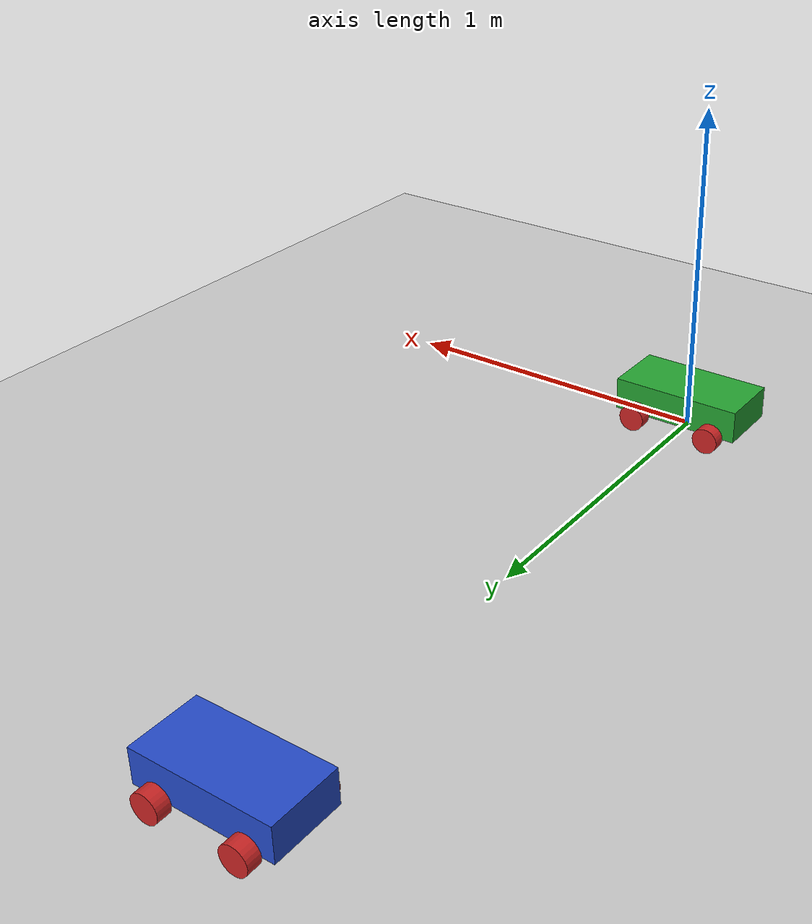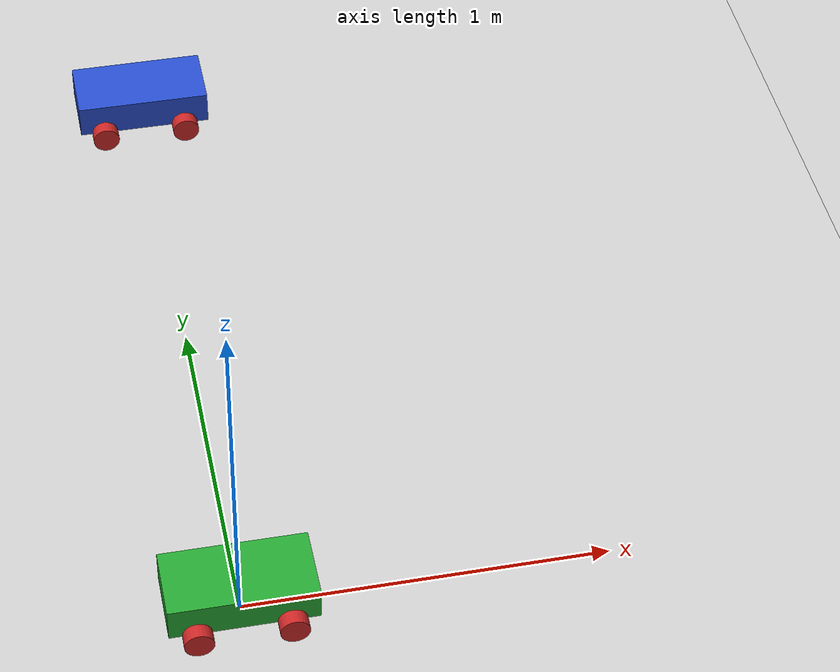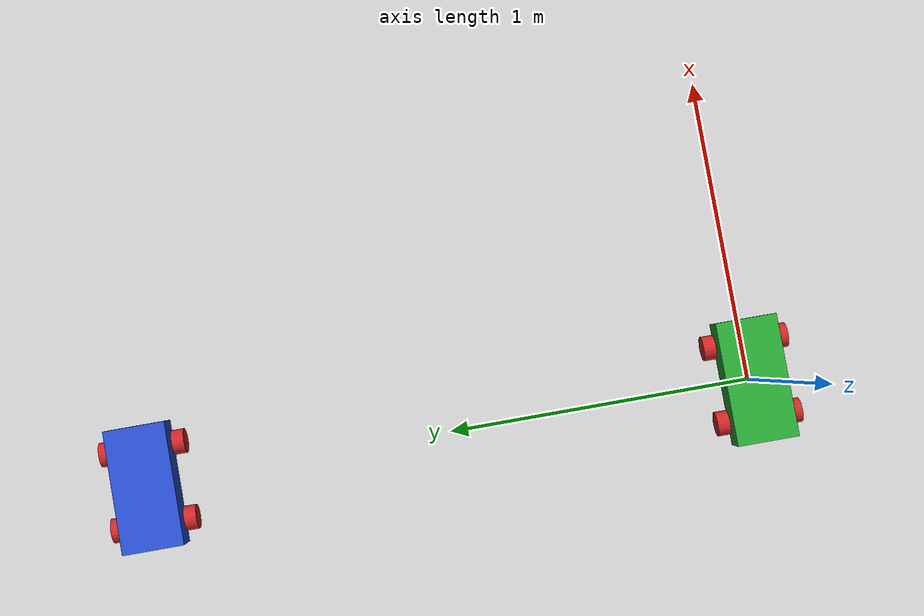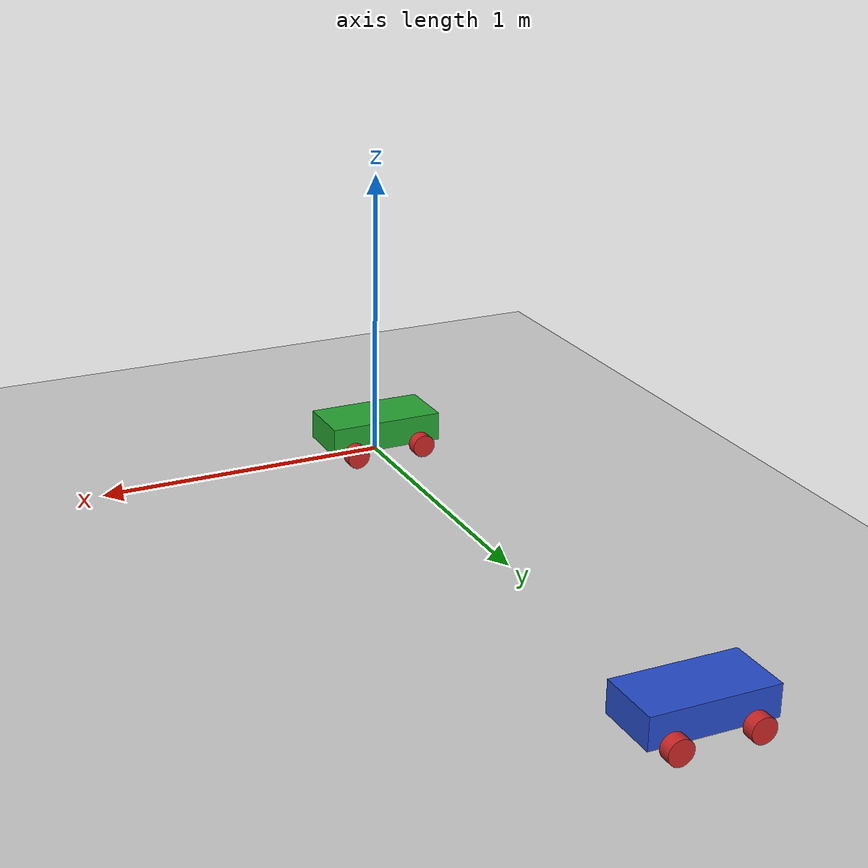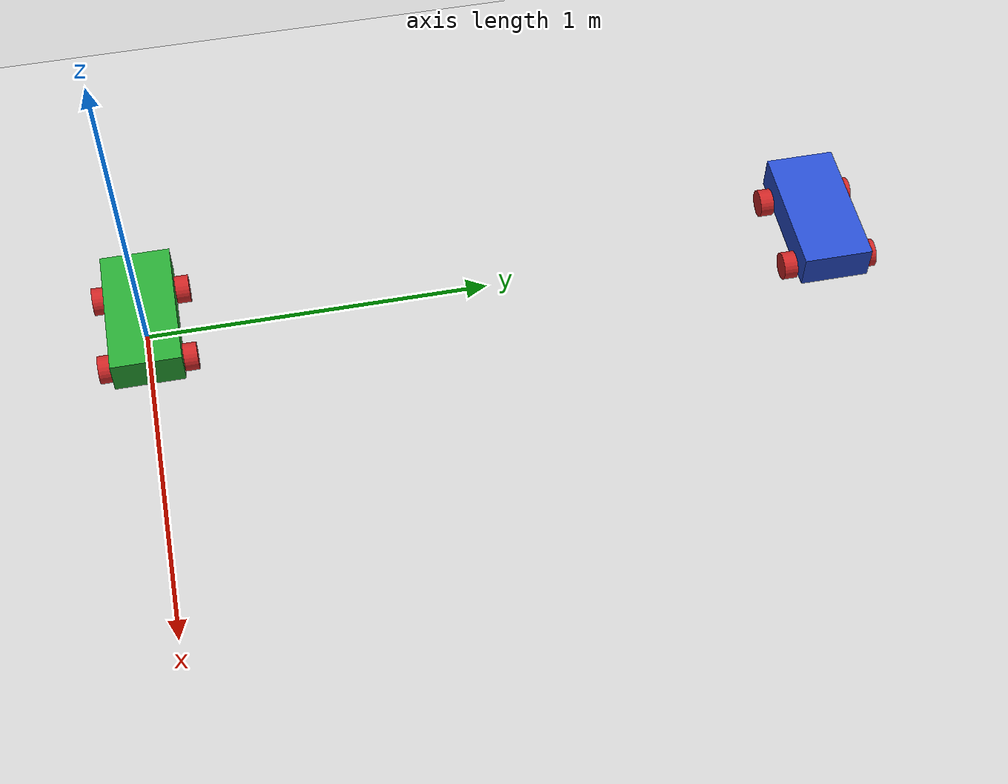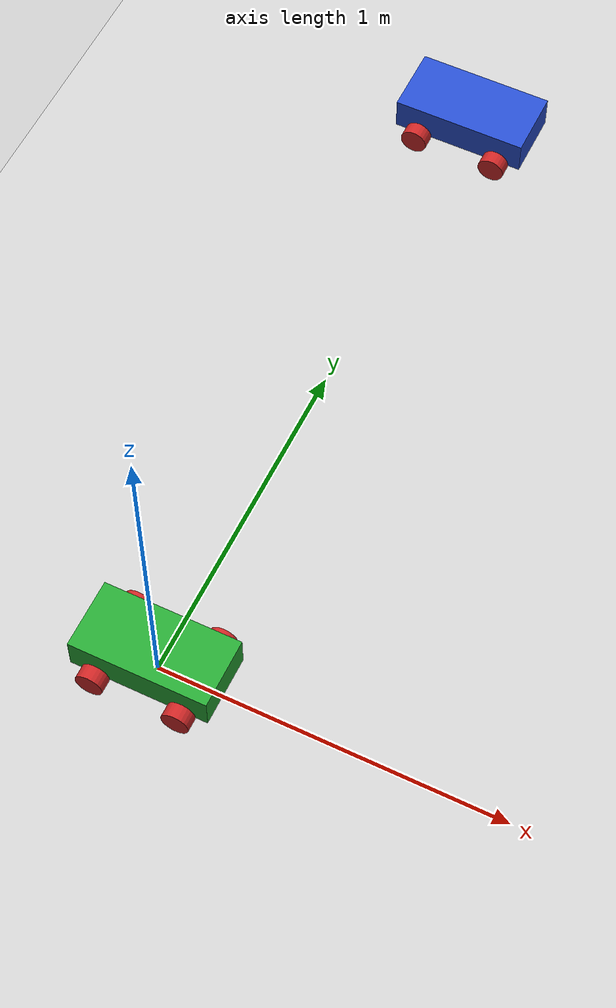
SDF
<?xml version="1.0" ?>
<sdf version="1.3">
  <world name="default">
    <physics type="ode">
      <gravity>0 0 -1</gravity>
      <ode>
        <solver>
          <type>quick</type>
          <dt>0.001</dt>
          <iters>40</iters>
          <sor>1.0</sor>
        </solver>
        <constraints>
          <cfm>0.0</cfm>
          <erp>0.2</erp>
          <contact_max_correcting_vel>100.0</contact_max_correcting_vel>
          <contact_surface_layer>0.0</contact_surface_layer>
        </constraints>
      </ode>
    </physics>
    <!-- A global light source -->
    <include>
      <uri>model://sun</uri>
    </include>
    <!-- A ground plane -->
    <include>
      <uri>model://ground_plane</uri>
    </include>
    <include>
      <uri>file://models/prey</uri>
      <pose>0 0 0 0 0 0</pose>
    </include>
    <include>
      <uri>file://models/predator</uri>
      <pose>0 2.0 0 0 0 0</pose>
    </include>
  </world>
</sdf>

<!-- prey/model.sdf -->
<sdf version="1.4">
  <model name="prey">
    <link name="body">
      <pose>0 0 0.09 0 0 0</pose>
      <inertial>
        <pose>0 0 0 0 0 0</pose>
        <inertia>
          <ixx>0.04167</ixx>
          <ixy>0</ixy>
          <ixz>0</ixz>
          <iyy>0.14167</iyy>
          <iyz>0</iyz>
          <izz>0.16667</izz>
        </inertia>
        <mass>100.0</mass>
      </inertial>
      <collision name="body_col">
        <pose>0 0 0 0 0 0</pose>
        <geometry>
          <box>
            <size>0.4 0.2 0.1</size>
          </box>
        </geometry>
      </collision>
      <visual name="body_vis">
        <pose>0 0 0 0 0 0</pose>
        <geometry>
          <box>
            <size>0.4 0.2 0.1</size>
          </box>
        </geometry>
        <material>
          <script>
            <uri>file://media/materials/scripts/gazebo.material</uri>
            <name>Gazebo/Green</name>
          </script>
        </material>
      </visual>
    </link>
    <link name="rear_driveshaft">
      <pose>-0.125 0 0.04 0 1.5708 0</pose>
    </link>
    <link name="steering_link">
      <pose>0.125 0 0.04 0 1.5708 0</pose>
    </link>
    <link name="spindle_front_left">
      <pose>0.125 0.095 0.04 1.5708 0 0</pose>
    </link>
    <link name="spindle_front_right">
      <pose>0.125 -0.095 0.04 1.5708 0 0</pose>
    </link>
    <link name="wheel_front_left">
      <pose>0.125 0.12 0.04 1.5708 0 0</pose>
      <inertial>
	<pose>0 0 0 0 0 0</pose>
        <inertia>
          <ixx>0.0008</ixx>
          <ixy>0</ixy>
          <ixz>0</ixz>
          <iyy>0.000533</iyy>
          <iyz>0</iyz>
          <izz>0.000533</izz>
        </inertia>
        <mass>1.0</mass>
      </inertial>
      <collision name="wheel_front_left_col">
        <pose>0 0 0 0 0 0</pose>
        <geometry>
          <cylinder>
            <radius>0.04</radius>
            <length>0.04</length>
          </cylinder>
        </geometry>
      </collision>
      <visual name="wheel_front_left_vis">
        <pose>0 0 0 0 0 0</pose>
        <geometry>
          <cylinder>
            <radius>0.04</radius>
            <length>0.04</length>
          </cylinder>
        </geometry>
        <material>
          <script>
            <uri>file://media/materials/scripts/gazebo.material</uri>
            <name>Gazebo/Red</name>
          </script>
        </material>
      </visual>
    </link>
    <link name="wheel_front_right">
      <pose>0.125 -0.12 0.04 1.5708 0 0</pose>
      <inertial>
	<pose>0 0 0 0 0 0</pose>
        <inertia>
          <ixx>0.0008</ixx>
          <ixy>0</ixy>
          <ixz>0</ixz>
          <iyy>0.000533</iyy>
          <iyz>0</iyz>
          <izz>0.000533</izz>
        </inertia>
        <mass>1.0</mass>
      </inertial>
      <collision name="wheel_front_right_col">
        <pose>0 0 0 0 0 0</pose>
        <geometry>
          <cylinder>
            <radius>0.04</radius>
            <length>0.04</length>
          </cylinder>
        </geometry>
      </collision>
      <visual name="wheel_front_right_vis">
        <pose>0 0 0 0 0 0</pose>
        <geometry>
          <cylinder>
            <radius>0.04</radius>
            <length>0.04</length>
          </cylinder>
        </geometry>
        <material>
          <script>
            <uri>file://media/materials/scripts/gazebo.material</uri>
            <name>Gazebo/Red</name>
          </script>
        </material>
      </visual>
    </link>
    <link name="wheel_rear_left">
      <pose>-0.125 0.12 0.04 1.5708 0 0</pose>
      <inertial>
	<pose>0 0 0 0 0 0</pose>
        <inertia>
          <ixx>0.0008</ixx>
          <ixy>0</ixy>
          <ixz>0</ixz>
          <iyy>0.000533</iyy>
          <iyz>0</iyz>
          <izz>0.000533</izz>
        </inertia>
        <mass>1.0</mass>
      </inertial>
      <collision name="wheel_rear_left_col">
        <pose>0 0 0 0 0 0</pose>
        <geometry>
          <cylinder>
            <radius>0.04</radius>
            <length>0.04</length>
          </cylinder>
        </geometry>
      </collision>
      <visual name="wheel_rear_left_vis">
        <pose>0 0 0 0 0 0</pose>
        <geometry>
          <cylinder>
            <radius>0.04</radius>
            <length>0.04</length>
          </cylinder>
        </geometry>
        <material>
          <script>
            <uri>file://media/materials/scripts/gazebo.material</uri>
            <name>Gazebo/Red</name>
          </script>
        </material>
      </visual>
    </link>
    <link name="wheel_rear_right">
      <pose>-0.125 -0.12 0.04 1.5708 0 0</pose>
      <inertial>
	<pose>0 0 0 0 0 0</pose>
        <inertia>
          <ixx>0.0008</ixx>
          <ixy>0</ixy>
          <ixz>0</ixz>
          <iyy>0.000533</iyy>
          <iyz>0</iyz>
          <izz>0.000533</izz>
        </inertia>
        <mass>1.0</mass>
      </inertial>
      <collision name="wheel_rear_right_col">
        <pose>0 0 0 0 0 0</pose>
        <geometry>
          <cylinder>
            <radius>0.04</radius>
            <length>0.04</length>
          </cylinder>
        </geometry>
      </collision>
      <visual name="wheel_rear_right_vis">
        <pose>0 0 0 0 0 0</pose>
        <geometry>
          <cylinder>
            <radius>0.04</radius>
            <length>0.04</length>
          </cylinder>
        </geometry>
        <material>
          <script>
            <uri>file://media/materials/scripts/gazebo.material</uri>
            <name>Gazebo/Red</name>
          </script>
        </material>
      </visual>
    </link>

    <!-- STEERING JOINTS -->
    <joint name="steering_box" type="revolute">
      <parent>body</parent>
      <child>steering_link</child>
      <axis>
        <dynamics>
          <damping>0.000000</damping>
          <friction>0.000000</friction>
        </dynamics>
        <xyz>1 0 0</xyz>
      </axis>
    </joint>
    <joint name="rear_differential" type="revolute">
      <parent>body</parent>
      <child>rear_driveshaft</child>
      <axis>
        <dynamics>
          <damping>0.000000</damping>
          <friction>0.000000</friction>
        </dynamics>
        <xyz>1 0 0</xyz>
      </axis>
    </joint>
    <joint name="kingpin_front_left" type="revolute">
      <parent>body</parent>
      <child>spindle_front_left</child>
      <axis>
        <dynamics>
          <damping>0.000000</damping>
          <friction>0.000000</friction>
        </dynamics>
        <xyz>0 0 1</xyz>
      </axis>
    </joint>
    <joint name="kingpin_front_right" type="revolute">
      <parent>body</parent>
      <child>spindle_front_right</child>
      <axis>
        <dynamics>
          <damping>0.000000</damping>
          <friction>0.000000</friction>
        </dynamics>
        <xyz>0 0 1</xyz>
      </axis>
    </joint>

    <!-- WHEEL BEARINGS -->
    <joint name="bearing_front_left" type="revolute">
      <parent>spindle_front_left</parent>
      <child>wheel_front_left</child>
      <axis>
        <dynamics>
          <damping>0.000000</damping>
          <friction>0.000000</friction>
        </dynamics>
        <xyz>0 1 0</xyz>
      </axis>
    </joint>
    <joint name="bearing_front_right" type="revolute">
      <parent>spindle_front_right</parent>
      <child>wheel_front_right</child>
      <axis>
        <dynamics>
          <damping>0.000000</damping>
          <friction>0.000000</friction>
        </dynamics>
        <xyz>0 1 0</xyz>
      </axis>
    </joint>
    <joint name="bearing_rear_left" type="revolute">
      <parent>body</parent>
      <child>wheel_rear_left</child>
      <axis>
        <dynamics>
          <damping>0.000000</damping>
          <friction>0.000000</friction>
        </dynamics>
        <xyz>0 1 0</xyz>
      </axis>
    </joint>
    <joint name="bearing_rear_right" type="revolute">
      <parent>body</parent>
      <child>wheel_rear_right</child>
      <axis>
        <dynamics>
          <damping>0.000000</damping>
          <friction>0.000000</friction>
        </dynamics>
        <xyz>0 1 0</xyz>
      </axis>
    </joint>

    <plugin name='prey_controller' filename='libprey_controller.so'>
      <!-- Tunable Parameters -->
      <max_speed>1.0</max_speed>
      <max_steering_velocity>0.0031416</max_steering_velocity>
      <steering_control_kp>100.0</steering_control_kp>
      <steering_control_kd>10.0</steering_control_kd>
      <speed_control_kp>100.0</speed_control_kp>
      <!-- Steering Linkage - Tune at own risk -->
      <max_steering_angle_deg>30.0</max_steering_angle_deg>
      <kingpin_distance>0.09</kingpin_distance>
      <steering_lever_base_angle_deg>75.0</steering_lever_base_angle_deg>
      <steering_lever_length>0.03</steering_lever_length>
      <tie_rod_length>0.075</tie_rod_length>
      <spindle_lever_length>0.055</spindle_lever_length>
    </plugin>

  </model>
</sdf>

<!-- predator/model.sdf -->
<sdf version="1.4">
  <model name="predator">
    <link name="body">
      <pose>0 0 0.09 0 0 0</pose>
      <inertial>
        <pose>0 0 0 0 0 0</pose>
        <inertia>
          <ixx>0.41667</ixx>
          <ixy>0</ixy>
          <ixz>0</ixz>
          <iyy>1.41667</iyy>
          <iyz>0</iyz>
          <izz>1.66667</izz>
        </inertia>
        <mass>100.0</mass>
      </inertial>
      <collision name="body_col">
        <pose>0 0 0 0 0 0</pose>
        <geometry>
          <box>
            <size>0.4 0.2 0.1</size>
          </box>
        </geometry>
      </collision>
      <visual name="body_vis">
        <pose>0 0 0 0 0 0</pose>
        <geometry>
          <box>
            <size>0.4 0.2 0.1</size>
          </box>
        </geometry>
        <material>
          <script>
            <uri>file://media/materials/scripts/gazebo.material</uri>
            <name>Gazebo/Blue</name>
          </script>
        </material>
      </visual>
    </link>
    <link name="rear_driveshaft">
      <pose>-0.125 0 0.04 0 1.5708 0</pose>
    </link>
    <link name="steering_link">
      <pose>0.125 0 0.04 0 1.5708 0</pose>
    </link>
    <link name="spindle_front_left">
      <pose>0.125 0.095 0.04 1.5708 0 0</pose>
    </link>
    <link name="spindle_front_right">
      <pose>0.125 -0.095 0.04 1.5708 0 0</pose>
    </link>
    <link name="wheel_front_left">
      <pose>0.125 0.12 0.04 1.5708 0 0</pose>
      <inertial>
	<pose>0 0 0 0 0 0</pose>
        <inertia>
          <ixx>0.0008</ixx>
          <ixy>0</ixy>
          <ixz>0</ixz>
          <iyy>0.000533</iyy>
          <iyz>0</iyz>
          <izz>0.000533</izz>
        </inertia>
        <mass>1.0</mass>
      </inertial>
      <collision name="wheel_front_left_col">
        <pose>0 0 0 0 0 0</pose>
        <geometry>
          <cylinder>
            <radius>0.04</radius>
            <length>0.04</length>
          </cylinder>
        </geometry>
      </collision>
      <visual name="wheel_front_left_vis">
        <pose>0 0 0 0 0 0</pose>
        <geometry>
          <cylinder>
            <radius>0.04</radius>
            <length>0.04</length>
          </cylinder>
        </geometry>
        <material>
          <script>
            <uri>file://media/materials/scripts/gazebo.material</uri>
            <name>Gazebo/Red</name>
          </script>
        </material>
      </visual>
    </link>
    <link name="wheel_front_right">
      <pose>0.125 -0.12 0.04 1.5708 0 0</pose>
      <inertial>
	<pose>0 0 0 0 0 0</pose>
        <inertia>
          <ixx>0.0008</ixx>
          <ixy>0</ixy>
          <ixz>0</ixz>
          <iyy>0.000533</iyy>
          <iyz>0</iyz>
          <izz>0.000533</izz>
        </inertia>
        <mass>1.0</mass>
      </inertial>
      <collision name="wheel_front_right_col">
        <pose>0 0 0 0 0 0</pose>
        <geometry>
          <cylinder>
            <radius>0.04</radius>
            <length>0.04</length>
          </cylinder>
        </geometry>
      </collision>
      <visual name="wheel_front_right_vis">
        <pose>0 0 0 0 0 0</pose>
        <geometry>
          <cylinder>
            <radius>0.04</radius>
            <length>0.04</length>
          </cylinder>
        </geometry>
        <material>
          <script>
            <uri>file://media/materials/scripts/gazebo.material</uri>
            <name>Gazebo/Red</name>
          </script>
        </material>
      </visual>
    </link>
    <link name="wheel_rear_left">
      <pose>-0.125 0.12 0.04 1.5708 0 0</pose>
      <inertial>
	<pose>0 0 0 0 0 0</pose>
        <inertia>
          <ixx>0.0008</ixx>
          <ixy>0</ixy>
          <ixz>0</ixz>
          <iyy>0.000533</iyy>
          <iyz>0</iyz>
          <izz>0.000533</izz>
        </inertia>
        <mass>1.0</mass>
      </inertial>
      <collision name="wheel_rear_left_col">
        <pose>0 0 0 0 0 0</pose>
        <geometry>
          <cylinder>
            <radius>0.04</radius>
            <length>0.04</length>
          </cylinder>
        </geometry>
      </collision>
      <visual name="wheel_rear_left_vis">
        <pose>0 0 0 0 0 0</pose>
        <geometry>
          <cylinder>
            <radius>0.04</radius>
            <length>0.04</length>
          </cylinder>
        </geometry>
        <material>
          <script>
            <uri>file://media/materials/scripts/gazebo.material</uri>
            <name>Gazebo/Red</name>
          </script>
        </material>
      </visual>
    </link>
    <link name="wheel_rear_right">
      <pose>-0.125 -0.12 0.04 1.5708 0 0</pose>
      <inertial>
	<pose>0 0 0 0 0 0</pose>
        <inertia>
          <ixx>0.0008</ixx>
          <ixy>0</ixy>
          <ixz>0</ixz>
          <iyy>0.000533</iyy>
          <iyz>0</iyz>
          <izz>0.000533</izz>
        </inertia>
        <mass>1.0</mass>
      </inertial>
      <collision name="wheel_rear_right_col">
        <pose>0 0 0 0 0 0</pose>
        <geometry>
          <cylinder>
            <radius>0.04</radius>
            <length>0.04</length>
          </cylinder>
        </geometry>
      </collision>
      <visual name="wheel_rear_right_vis">
        <pose>0 0 0 0 0 0</pose>
        <geometry>
          <cylinder>
            <radius>0.04</radius>
            <length>0.04</length>
          </cylinder>
        </geometry>
        <material>
          <script>
            <uri>file://media/materials/scripts/gazebo.material</uri>
            <name>Gazebo/Red</name>
          </script>
        </material>
      </visual>
    </link>

    <!-- STEERING JOINTS -->
    <joint name="steering_box" type="revolute">
      <parent>body</parent>
      <child>steering_link</child>
      <axis>
        <dynamics>
          <damping>0.000000</damping>
          <friction>0.000000</friction>
        </dynamics>
        <xyz>1 0 0</xyz>
      </axis>
    </joint>
    <joint name="rear_differential" type="revolute">
      <parent>body</parent>
      <child>rear_driveshaft</child>
      <axis>
        <dynamics>
          <damping>0.000000</damping>
          <friction>0.000000</friction>
        </dynamics>
        <xyz>1 0 0</xyz>
      </axis>
    </joint>
    <joint name="kingpin_front_left" type="revolute">
      <parent>body</parent>
      <child>spindle_front_left</child>
      <axis>
        <dynamics>
          <damping>0.000000</damping>
          <friction>0.000000</friction>
        </dynamics>
        <xyz>0 0 1</xyz>
      </axis>
    </joint>
    <joint name="kingpin_front_right" type="revolute">
      <parent>body</parent>
      <child>spindle_front_right</child>
      <axis>
        <dynamics>
          <damping>0.000000</damping>
          <friction>0.000000</friction>
        </dynamics>
        <xyz>0 0 1</xyz>
      </axis>
    </joint>

    <!-- WHEEL BEARINGS -->
    <joint name="bearing_front_left" type="revolute">
      <parent>spindle_front_left</parent>
      <child>wheel_front_left</child>
      <axis>
        <dynamics>
          <damping>0.000000</damping>
          <friction>0.000000</friction>
        </dynamics>
        <xyz>0 1 0</xyz>
      </axis>
    </joint>
    <joint name="bearing_front_right" type="revolute">
      <parent>spindle_front_right</parent>
      <child>wheel_front_right</child>
      <axis>
        <dynamics>
          <damping>0.000000</damping>
          <friction>0.000000</friction>
        </dynamics>
        <xyz>0 1 0</xyz>
      </axis>
    </joint>
    <joint name="bearing_rear_left" type="revolute">
      <parent>body</parent>
      <child>wheel_rear_left</child>
      <axis>
        <dynamics>
          <damping>0.000000</damping>
          <friction>0.000000</friction>
        </dynamics>
        <xyz>0 1 0</xyz>
      </axis>
    </joint>
    <joint name="bearing_rear_right" type="revolute">
      <parent>body</parent>
      <child>wheel_rear_right</child>
      <axis>
        <dynamics>
          <damping>0.000000</damping>
          <friction>0.000000</friction>
        </dynamics>
        <xyz>0 1 0</xyz>
      </axis>
    </joint>
  </model>
</sdf>
